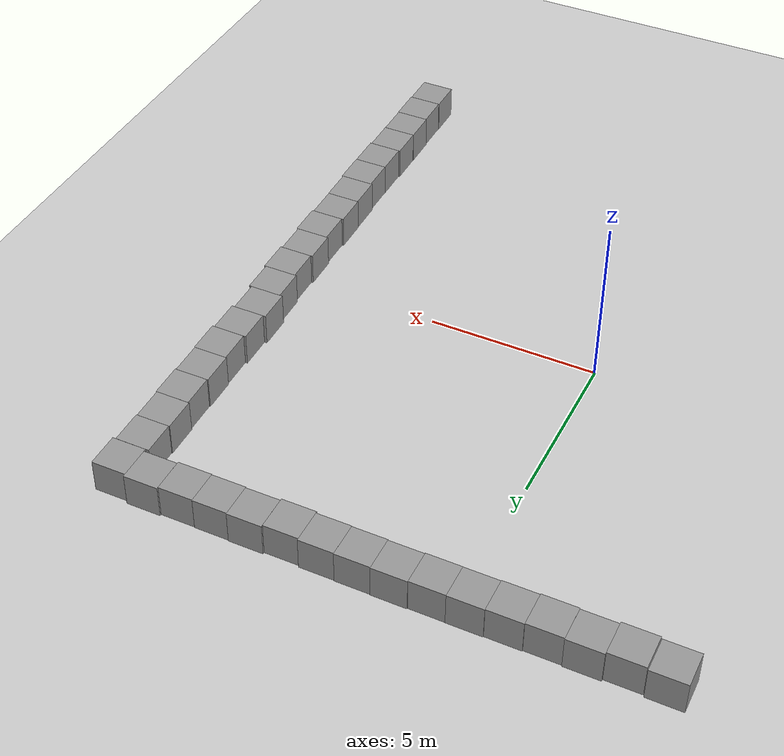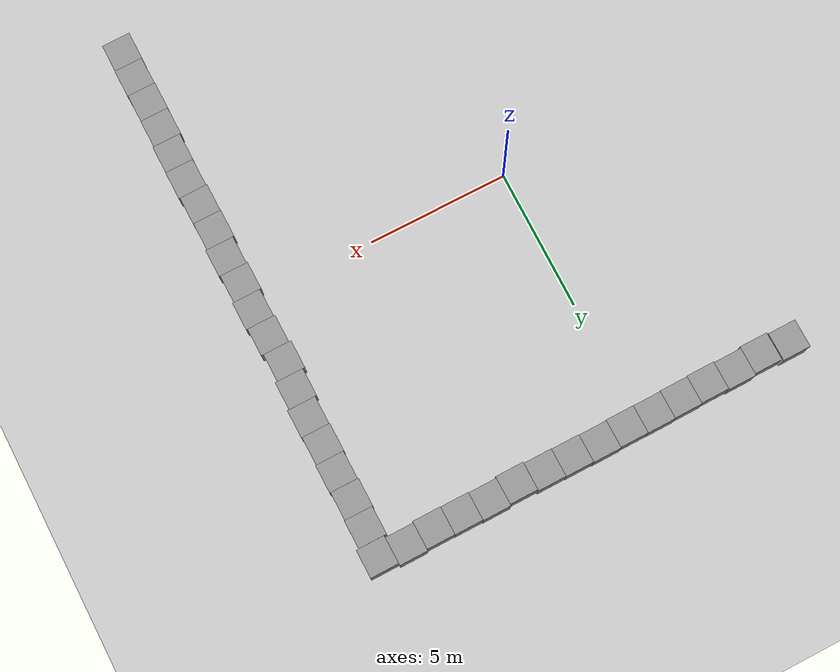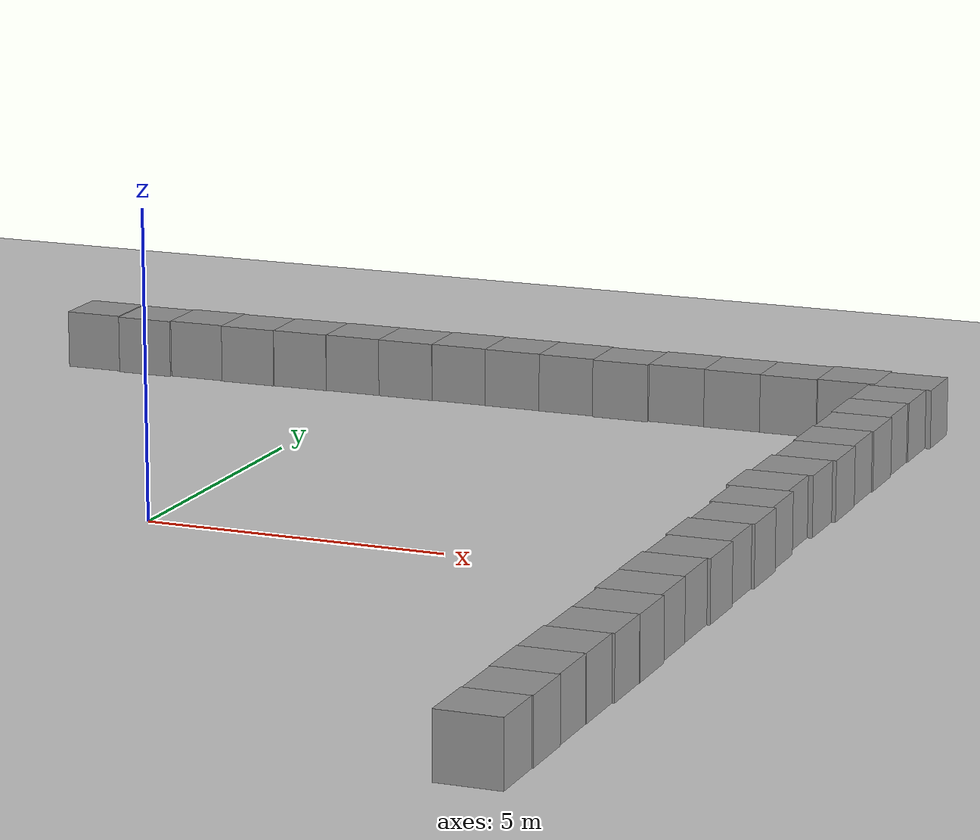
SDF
<sdf version="1.7">
 <world name="default">
  <light name="sun" type="directional">
   <pose>0 0 10 0 -0 0</pose>
   <diffuse>0.8 0.8 0.8 1</diffuse>
   <specular>0.2 0.2 0.2 1</specular>
   <attenuation>
    <range>1000</range>
    <constant>0.9</constant>
    <linear>0.01</linear>
    <quadratic>0.001</quadratic>
   </attenuation>
   <direction>-0.5 0.1 -0.9</direction>
   <spot><inner_angle>0</inner_angle><outer_angle>0</outer_angle><falloff>0</falloff></spot>
  </light>
  <model name="ground_plane">
   <static>1</static>
   <link name="link">
    <collision name="collision">
     <geometry><plane><normal>0 0 1</normal><size>100 100</size></plane></geometry>
     <surface>
      <contact><collide_bitmask>65535</collide_bitmask></contact>
      <friction><ode><mu>100</mu><mu2>50</mu2></ode></friction>
     </surface>
    </collision>
    <visual name="visual">
     <cast_shadows>0</cast_shadows>
     <geometry><plane><normal>0 0 1</normal><size>100 100</size></plane></geometry>
     <material>
      <script><uri>file://media/materials/scripts/gazebo.material</uri><name>Gazebo/Grey</name></script>
     </material>
    </visual>
   </link>
  </model>
  <gravity>0 0 -9.8</gravity>
  <magnetic_field>6e-06 2.3e-05 -4.2e-05</magnetic_field>
  <atmosphere type="adiabatic"/>
  <physics type="ode">
   <max_step_size>0.001</max_step_size>
   <real_time_factor>1</real_time_factor>
   <real_time_update_rate>1000</real_time_update_rate>
  </physics>
  <scene><ambient>0.4 0.4 0.4 1</ambient><background>0.7 0.7 0.7 1</background><shadows>1</shadows></scene>
  <audio><device>default</device></audio>
  <spherical_coordinates>
   <surface_model>EARTH_WGS84</surface_model>
   <latitude_deg>0</latitude_deg>
   <longitude_deg>0</longitude_deg>
   <elevation>0</elevation>
   <heading_deg>0</heading_deg>
  </spherical_coordinates>
  <model name="unit_box">
   <pose>9.51808 -9.54038 0.499995 0 1e-05 0.007074</pose>
   <link name="link">
    <inertial>
     <mass>1</mass>
     <inertia>
      <ixx>0.166667</ixx>
      <ixy>0</ixy>
      <ixz>0</ixz>
      <iyy>0.166667</iyy>
      <iyz>0</iyz>
      <izz>0.166667</izz>
     </inertia>
    </inertial>
    <collision name="collision"><geometry><box><size>1 1 1</size></box></geometry></collision>
    <visual name="visual">
     <geometry><box><size>1 1 1</size></box></geometry>
     <material>
      <script><name>Gazebo/Grey</name><uri>file://media/materials/scripts/gazebo.material</uri></script>
     </material>
    </visual>
   </link>
  </model>
  <model name="unit_box_0">
   <pose>9.5262 -8.54029 0.499995 0 -1e-05 0.007074</pose>
   <link name="link">
    <inertial>
     <mass>1</mass>
     <inertia>
      <ixx>0.166667</ixx>
      <ixy>0</ixy>
      <ixz>0</ixz>
      <iyy>0.166667</iyy>
      <iyz>0</iyz>
      <izz>0.166667</izz>
     </inertia>
    </inertial>
    <collision name="collision"><geometry><box><size>1 1 1</size></box></geometry></collision>
    <visual name="visual">
     <geometry><box><size>1 1 1</size></box></geometry>
     <material>
      <script><name>Gazebo/Grey</name><uri>file://media/materials/scripts/gazebo.material</uri></script>
     </material>
    </visual>
   </link>
  </model>
  <model name="unit_box_1">
   <pose>9.50518 -7.54041 0.499995 1e-05 0 0.007087</pose>
   <link name="link">
    <inertial>
     <mass>1</mass>
     <inertia>
      <ixx>0.166667</ixx>
      <ixy>0</ixy>
      <ixz>0</ixz>
      <iyy>0.166667</iyy>
      <iyz>0</iyz>
      <izz>0.166667</izz>
     </inertia>
    </inertial>
    <collision name="collision"><geometry><box><size>1 1 1</size></box></geometry></collision>
    <visual name="visual">
     <geometry><box><size>1 1 1</size></box></geometry>
     <material>
      <script><name>Gazebo/Grey</name><uri>file://media/materials/scripts/gazebo.material</uri></script>
     </material>
    </visual>
   </link>
  </model>
  <model name="unit_box_2">
   <pose>9.50638 -6.54026 0.5 0 -0 0.007307</pose>
   <link name="link">
    <inertial>
     <mass>1</mass>
     <inertia>
      <ixx>0.166667</ixx>
      <ixy>0</ixy>
      <ixz>0</ixz>
      <iyy>0.166667</iyy>
      <iyz>0</iyz>
      <izz>0.166667</izz>
     </inertia>
    </inertial>
    <collision name="collision"><geometry><box><size>1 1 1</size></box></geometry></collision>
    <visual name="visual">
     <geometry><box><size>1 1 1</size></box></geometry>
     <material>
      <script><name>Gazebo/Grey</name><uri>file://media/materials/scripts/gazebo.material</uri></script>
     </material>
    </visual>
   </link>
  </model>
  <model name="unit_box_3">
   <pose>9.53845 -5.53996 0.499995 1e-05 0 0.007395</pose>
   <link name="link">
    <inertial>
     <mass>1</mass>
     <inertia>
      <ixx>0.166667</ixx>
      <ixy>0</ixy>
      <ixz>0</ixz>
      <iyy>0.166667</iyy>
      <iyz>0</iyz>
      <izz>0.166667</izz>
     </inertia>
    </inertial>
    <collision name="collision"><geometry><box><size>1 1 1</size></box></geometry></collision>
    <visual name="visual">
     <geometry><box><size>1 1 1</size></box></geometry>
     <material>
      <script><name>Gazebo/Grey</name><uri>file://media/materials/scripts/gazebo.material</uri></script>
     </material>
    </visual>
   </link>
  </model>
  <model name="unit_box_4">
   <pose>9.53946 -4.53976 0.5 0 -0 0.007716</pose>
   <link name="link">
    <inertial>
     <mass>1</mass>
     <inertia>
      <ixx>0.166667</ixx>
      <ixy>0</ixy>
      <ixz>0</ixz>
      <iyy>0.166667</iyy>
      <iyz>0</iyz>
      <izz>0.166667</izz>
     </inertia>
    </inertial>
    <collision name="collision"><geometry><box><size>1 1 1</size></box></geometry></collision>
    <visual name="visual">
     <geometry><box><size>1 1 1</size></box></geometry>
     <material>
      <script><name>Gazebo/Grey</name><uri>file://media/materials/scripts/gazebo.material</uri></script>
     </material>
    </visual>
   </link>
  </model>
  <model name="unit_box_5">
   <pose>9.4944 -3.54004 0.499995 0 1e-05 0.007779</pose>
   <link name="link">
    <inertial>
     <mass>1</mass>
     <inertia>
      <ixx>0.166667</ixx>
      <ixy>0</ixy>
      <ixz>0</ixz>
      <iyy>0.166667</iyy>
      <iyz>0</iyz>
      <izz>0.166667</izz>
     </inertia>
    </inertial>
    <collision name="collision"><geometry><box><size>1 1 1</size></box></geometry></collision>
    <visual name="visual">
     <geometry><box><size>1 1 1</size></box></geometry>
     <material>
      <script><name>Gazebo/Grey</name><uri>file://media/materials/scripts/gazebo.material</uri></script>
     </material>
    </visual>
   </link>
  </model>
  <model name="unit_box_6">
   <pose>9.47628 -2.54012 0.499995 -0 1e-05 0.007828</pose>
   <link name="link">
    <inertial>
     <mass>1</mass>
     <inertia>
      <ixx>0.166667</ixx>
      <ixy>0</ixy>
      <ixz>0</ixz>
      <iyy>0.166667</iyy>
      <iyz>0</iyz>
      <izz>0.166667</izz>
     </inertia>
    </inertial>
    <collision name="collision"><geometry><box><size>1 1 1</size></box></geometry></collision>
    <visual name="visual">
     <geometry><box><size>1 1 1</size></box></geometry>
     <material>
      <script><name>Gazebo/Grey</name><uri>file://media/materials/scripts/gazebo.material</uri></script>
     </material>
    </visual>
   </link>
  </model>
  <model name="unit_box_7">
   <pose>9.5184 -1.53971 0.499995 0 1e-05 0.007937</pose>
   <link name="link">
    <inertial>
     <mass>1</mass>
     <inertia>
      <ixx>0.166667</ixx>
      <ixy>0</ixy>
      <ixz>0</ixz>
      <iyy>0.166667</iyy>
      <iyz>0</iyz>
      <izz>0.166667</izz>
     </inertia>
    </inertial>
    <collision name="collision"><geometry><box><size>1 1 1</size></box></geometry></collision>
    <visual name="visual">
     <geometry><box><size>1 1 1</size></box></geometry>
     <material>
      <script><name>Gazebo/Grey</name><uri>file://media/materials/scripts/gazebo.material</uri></script>
     </material>
    </visual>
   </link>
  </model>
  <model name="unit_box_8">
   <pose>9.4695 -0.540063 0.499995 0 1e-05 0.007937</pose>
   <link name="link">
    <inertial>
     <mass>1</mass>
     <inertia>
      <ixx>0.166667</ixx>
      <ixy>0</ixy>
      <ixz>0</ixz>
      <iyy>0.166667</iyy>
      <iyz>0</iyz>
      <izz>0.166667</izz>
     </inertia>
    </inertial>
    <collision name="collision"><geometry><box><size>1 1 1</size></box></geometry></collision>
    <visual name="visual">
     <geometry><box><size>1 1 1</size></box></geometry>
     <material>
      <script><name>Gazebo/Grey</name><uri>file://media/materials/scripts/gazebo.material</uri></script>
     </material>
    </visual>
   </link>
  </model>
  <model name="unit_box_8_clone">
   <pose>9.51195 0.460305 0.499995 1e-05 -0 0.007937</pose>
   <link name="link">
    <inertial>
     <mass>1</mass>
     <inertia>
      <ixx>0.166667</ixx>
      <ixy>0</ixy>
      <ixz>0</ixz>
      <iyy>0.166667</iyy>
      <iyz>0</iyz>
      <izz>0.166667</izz>
     </inertia>
    </inertial>
    <collision name="collision"><geometry><box><size>1 1 1</size></box></geometry></collision>
    <visual name="visual">
     <geometry><box><size>1 1 1</size></box></geometry>
     <material>
      <script><name>Gazebo/Grey</name><uri>file://media/materials/scripts/gazebo.material</uri></script>
     </material>
    </visual>
   </link>
  </model>
  <model name="unit_box_8_clone_0">
   <pose>9.45463 1.4599 0.499995 -1e-05 -0 0.007933</pose>
   <link name="link">
    <inertial>
     <mass>1</mass>
     <inertia>
      <ixx>0.166667</ixx>
      <ixy>0</ixy>
      <ixz>0</ixz>
      <iyy>0.166667</iyy>
      <iyz>0</iyz>
      <izz>0.166667</izz>
     </inertia>
    </inertial>
    <collision name="collision"><geometry><box><size>1 1 1</size></box></geometry></collision>
    <visual name="visual">
     <geometry><box><size>1 1 1</size></box></geometry>
     <material>
      <script><name>Gazebo/Grey</name><uri>file://media/materials/scripts/gazebo.material</uri></script>
     </material>
    </visual>
   </link>
  </model>
  <model name="unit_box_8_clone_1">
   <pose>9.36789 2.45924 0.499995 0 -1e-05 0.00793</pose>
   <link name="link">
    <inertial>
     <mass>1</mass>
     <inertia>
      <ixx>0.166667</ixx>
      <ixy>0</ixy>
      <ixz>0</ixz>
      <iyy>0.166667</iyy>
      <iyz>0</iyz>
      <izz>0.166667</izz>
     </inertia>
    </inertial>
    <collision name="collision"><geometry><box><size>1 1 1</size></box></geometry></collision>
    <visual name="visual">
     <geometry><box><size>1 1 1</size></box></geometry>
     <material>
      <script><name>Gazebo/Grey</name><uri>file://media/materials/scripts/gazebo.material</uri></script>
     </material>
    </visual>
   </link>
  </model>
  <model name="unit_box_8_clone_2">
   <pose>9.43952 3.45985 0.499995 0 -1e-05 0.007929</pose>
   <link name="link">
    <inertial>
     <mass>1</mass>
     <inertia>
      <ixx>0.166667</ixx>
      <ixy>0</ixy>
      <ixz>0</ixz>
      <iyy>0.166667</iyy>
      <iyz>0</iyz>
      <izz>0.166667</izz>
     </inertia>
    </inertial>
    <collision name="collision"><geometry><box><size>1 1 1</size></box></geometry></collision>
    <visual name="visual">
     <geometry><box><size>1 1 1</size></box></geometry>
     <material>
      <script><name>Gazebo/Grey</name><uri>file://media/materials/scripts/gazebo.material</uri></script>
     </material>
    </visual>
   </link>
  </model>
  <model name="unit_box_8_clone_3">
   <pose>9.49457 4.46032 0.5 0 -0 0.007929</pose>
   <link name="link">
    <inertial>
     <mass>1</mass>
     <inertia>
      <ixx>0.166667</ixx>
      <ixy>0</ixy>
      <ixz>0</ixz>
      <iyy>0.166667</iyy>
      <iyz>0</iyz>
      <izz>0.166667</izz>
     </inertia>
    </inertial>
    <collision name="collision"><geometry><box><size>1 1 1</size></box></geometry></collision>
    <visual name="visual">
     <geometry><box><size>1 1 1</size></box></geometry>
     <material>
      <script><name>Gazebo/Grey</name><uri>file://media/materials/scripts/gazebo.material</uri></script>
     </material>
    </visual>
   </link>
  </model>
  <model name="unit_box_8_clone_4">
   <pose>9.46475 5.46011 0.499995 0 -1e-05 0.007929</pose>
   <link name="link">
    <inertial>
     <mass>1</mass>
     <inertia>
      <ixx>0.166667</ixx>
      <ixy>0</ixy>
      <ixz>0</ixz>
      <iyy>0.166667</iyy>
      <iyz>0</iyz>
      <izz>0.166667</izz>
     </inertia>
    </inertial>
    <collision name="collision"><geometry><box><size>1 1 1</size></box></geometry></collision>
    <visual name="visual">
     <geometry><box><size>1 1 1</size></box></geometry>
     <material>
      <script><name>Gazebo/Grey</name><uri>file://media/materials/scripts/gazebo.material</uri></script>
     </material>
    </visual>
   </link>
  </model>
  <model name="unit_box_8_clone_5">
   <pose>9.48319 6.4603 0.499995 -1e-05 -0 0.007929</pose>
   <link name="link">
    <inertial>
     <mass>1</mass>
     <inertia>
      <ixx>0.166667</ixx>
      <ixy>0</ixy>
      <ixz>0</ixz>
      <iyy>0.166667</iyy>
      <iyz>0</iyz>
      <izz>0.166667</izz>
     </inertia>
    </inertial>
    <collision name="collision"><geometry><box><size>1 1 1</size></box></geometry></collision>
    <visual name="visual">
     <geometry><box><size>1 1 1</size></box></geometry>
     <material>
      <script><name>Gazebo/Grey</name><uri>file://media/materials/scripts/gazebo.material</uri></script>
     </material>
    </visual>
   </link>
  </model>
  <model name="unit_box_8_clone_6">
   <pose>9.44585 7.46036 0.499995 1e-05 -0 0.007261</pose>
   <link name="link">
    <inertial>
     <mass>1</mass>
     <inertia>
      <ixx>0.166667</ixx>
      <ixy>0</ixy>
      <ixz>0</ixz>
      <iyy>0.166667</iyy>
      <iyz>0</iyz>
      <izz>0.166667</izz>
     </inertia>
    </inertial>
    <collision name="collision"><geometry><box><size>1 1 1</size></box></geometry></collision>
    <visual name="visual">
     <geometry><box><size>1 1 1</size></box></geometry>
     <material>
      <script><name>Gazebo/Grey</name><uri>file://media/materials/scripts/gazebo.material</uri></script>
     </material>
    </visual>
   </link>
  </model>
  <model name="unit_box_8_clone_7">
   <pose>9.46062 8.46051 0.5 0 -0 0.00725</pose>
   <link name="link">
    <inertial>
     <mass>1</mass>
     <inertia>
      <ixx>0.166667</ixx>
      <ixy>0</ixy>
      <ixz>0</ixz>
      <iyy>0.166667</iyy>
      <iyz>0</iyz>
      <izz>0.166667</izz>
     </inertia>
    </inertial>
    <collision name="collision"><geometry><box><size>1 1 1</size></box></geometry></collision>
    <visual name="visual">
     <geometry><box><size>1 1 1</size></box></geometry>
     <material>
      <script><name>Gazebo/Grey</name><uri>file://media/materials/scripts/gazebo.material</uri></script>
     </material>
    </visual>
   </link>
  </model>
  <model name="unit_box_8_clone_8">
   <pose>9.54481 9.4622 0.5 0 -0 0.009147</pose>
   <link name="link">
    <inertial>
     <mass>1</mass>
     <inertia>
      <ixx>0.166667</ixx>
      <ixy>0</ixy>
      <ixz>0</ixz>
      <iyy>0.166667</iyy>
      <iyz>0</iyz>
      <izz>0.166667</izz>
     </inertia>
    </inertial>
    <collision name="collision"><geometry><box><size>1 1 1</size></box></geometry></collision>
    <visual name="visual">
     <geometry><box><size>1 1 1</size></box></geometry>
     <material>
      <script><name>Gazebo/Grey</name><uri>file://media/materials/scripts/gazebo.material</uri></script>
     </material>
    </visual>
   </link>
  </model>
  <model name="unit_box_8_clone_9">
   <pose>8.54387 9.53008 0.499995 0 -1e-05 0.0092</pose>
   <link name="link">
    <inertial>
     <mass>1</mass>
     <inertia>
      <ixx>0.166667</ixx>
      <ixy>0</ixy>
      <ixz>0</ixz>
      <iyy>0.166667</iyy>
      <iyz>0</iyz>
      <izz>0.166667</izz>
     </inertia>
    </inertial>
    <collision name="collision"><geometry><box><size>1 1 1</size></box></geometry></collision>
    <visual name="visual">
     <geometry><box><size>1 1 1</size></box></geometry>
     <material>
      <script><name>Gazebo/Grey</name><uri>file://media/materials/scripts/gazebo.material</uri></script>
     </material>
    </visual>
   </link>
  </model>
  <model name="unit_box_8_clone_10">
   <pose>7.54423 9.47492 0.499995 0 1e-05 0.009215</pose>
   <link name="link">
    <inertial>
     <mass>1</mass>
     <inertia>
      <ixx>0.166667</ixx>
      <ixy>0</ixy>
      <ixz>0</ixz>
      <iyy>0.166667</iyy>
      <iyz>0</iyz>
      <izz>0.166667</izz>
     </inertia>
    </inertial>
    <collision name="collision"><geometry><box><size>1 1 1</size></box></geometry></collision>
    <visual name="visual">
     <geometry><box><size>1 1 1</size></box></geometry>
     <material>
      <script><name>Gazebo/Grey</name><uri>file://media/materials/scripts/gazebo.material</uri></script>
     </material>
    </visual>
   </link>
  </model>
  <model name="unit_box_8_clone_11">
   <pose>6.54401 9.47893 0.499995 0 -1e-05 0.009153</pose>
   <link name="link">
    <inertial>
     <mass>1</mass>
     <inertia>
      <ixx>0.166667</ixx>
      <ixy>0</ixy>
      <ixz>0</ixz>
      <iyy>0.166667</iyy>
      <iyz>0</iyz>
      <izz>0.166667</izz>
     </inertia>
    </inertial>
    <collision name="collision"><geometry><box><size>1 1 1</size></box></geometry></collision>
    <visual name="visual">
     <geometry><box><size>1 1 1</size></box></geometry>
     <material>
      <script><name>Gazebo/Grey</name><uri>file://media/materials/scripts/gazebo.material</uri></script>
     </material>
    </visual>
   </link>
  </model>
  <model name="unit_box_8_clone_12">
   <pose>5.54372 9.49144 0.499995 1e-05 -0 0.008988</pose>
   <link name="link">
    <inertial>
     <mass>1</mass>
     <inertia>
      <ixx>0.166667</ixx>
      <ixy>0</ixy>
      <ixz>0</ixz>
      <iyy>0.166667</iyy>
      <iyz>0</iyz>
      <izz>0.166667</izz>
     </inertia>
    </inertial>
    <collision name="collision"><geometry><box><size>1 1 1</size></box></geometry></collision>
    <visual name="visual">
     <geometry><box><size>1 1 1</size></box></geometry>
     <material>
      <script><name>Gazebo/Grey</name><uri>file://media/materials/scripts/gazebo.material</uri></script>
     </material>
    </visual>
   </link>
  </model>
  <model name="unit_box_8_clone_13">
   <pose>4.54408 9.43057 0.5 0 -0 0.008712</pose>
   <link name="link">
    <inertial>
     <mass>1</mass>
     <inertia>
      <ixx>0.166667</ixx>
      <ixy>0</ixy>
      <ixz>0</ixz>
      <iyy>0.166667</iyy>
      <iyz>0</iyz>
      <izz>0.166667</izz>
     </inertia>
    </inertial>
    <collision name="collision"><geometry><box><size>1 1 1</size></box></geometry></collision>
    <visual name="visual">
     <geometry><box><size>1 1 1</size></box></geometry>
     <material>
      <script><name>Gazebo/Grey</name><uri>file://media/materials/scripts/gazebo.material</uri></script>
     </material>
    </visual>
   </link>
  </model>
  <model name="unit_box_8_clone_14">
   <pose>3.54339 9.4698 0.499995 -1e-05 -0 0.008058</pose>
   <link name="link">
    <inertial>
     <mass>1</mass>
     <inertia>
      <ixx>0.166667</ixx>
      <ixy>0</ixy>
      <ixz>0</ixz>
      <iyy>0.166667</iyy>
      <iyz>0</iyz>
      <izz>0.166667</izz>
     </inertia>
    </inertial>
    <collision name="collision"><geometry><box><size>1 1 1</size></box></geometry></collision>
    <visual name="visual">
     <geometry><box><size>1 1 1</size></box></geometry>
     <material>
      <script><name>Gazebo/Grey</name><uri>file://media/materials/scripts/gazebo.material</uri></script>
     </material>
    </visual>
   </link>
  </model>
  <model name="unit_box_8_clone_15">
   <pose>2.54322 9.47546 0.499995 1e-05 -0 0.0081</pose>
   <link name="link">
    <inertial>
     <mass>1</mass>
     <inertia>
      <ixx>0.166667</ixx>
      <ixy>0</ixy>
      <ixz>0</ixz>
      <iyy>0.166667</iyy>
      <iyz>0</iyz>
      <izz>0.166667</izz>
     </inertia>
    </inertial>
    <collision name="collision"><geometry><box><size>1 1 1</size></box></geometry></collision>
    <visual name="visual">
     <geometry><box><size>1 1 1</size></box></geometry>
     <material>
      <script><name>Gazebo/Grey</name><uri>file://media/materials/scripts/gazebo.material</uri></script>
     </material>
    </visual>
   </link>
  </model>
  <model name="unit_box_8_clone_16">
   <pose>1.54299 9.48403 0.5 0 -0 0.008046</pose>
   <link name="link">
    <inertial>
     <mass>1</mass>
     <inertia>
      <ixx>0.166667</ixx>
      <ixy>0</ixy>
      <ixz>0</ixz>
      <iyy>0.166667</iyy>
      <iyz>0</iyz>
      <izz>0.166667</izz>
     </inertia>
    </inertial>
    <collision name="collision"><geometry><box><size>1 1 1</size></box></geometry></collision>
    <visual name="visual">
     <geometry><box><size>1 1 1</size></box></geometry>
     <material>
      <script><name>Gazebo/Grey</name><uri>file://media/materials/scripts/gazebo.material</uri></script>
     </material>
    </visual>
   </link>
  </model>
  <model name="unit_box_8_clone_17">
   <pose>0.543177 9.45656 0.5 0 -0 0.008044</pose>
   <link name="link">
    <inertial>
     <mass>1</mass>
     <inertia>
      <ixx>0.166667</ixx>
      <ixy>0</ixy>
      <ixz>0</ixz>
      <iyy>0.166667</iyy>
      <iyz>0</iyz>
      <izz>0.166667</izz>
     </inertia>
    </inertial>
    <collision name="collision"><geometry><box><size>1 1 1</size></box></geometry></collision>
    <visual name="visual">
     <geometry><box><size>1 1 1</size></box></geometry>
     <material>
      <script><name>Gazebo/Grey</name><uri>file://media/materials/scripts/gazebo.material</uri></script>
     </material>
    </visual>
   </link>
  </model>
  <model name="unit_box_8_clone_18">
   <pose>-0.457005 9.45489 0.499995 1e-05 0 0.008209</pose>
   <link name="link">
    <inertial>
     <mass>1</mass>
     <inertia>
      <ixx>0.166667</ixx>
      <ixy>0</ixy>
      <ixz>0</ixz>
      <iyy>0.166667</iyy>
      <iyz>0</iyz>
      <izz>0.166667</izz>
     </inertia>
    </inertial>
    <collision name="collision"><geometry><box><size>1 1 1</size></box></geometry></collision>
    <visual name="visual">
     <geometry><box><size>1 1 1</size></box></geometry>
     <material>
      <script><name>Gazebo/Grey</name><uri>file://media/materials/scripts/gazebo.material</uri></script>
     </material>
    </visual>
   </link>
  </model>
  <model name="unit_box_8_clone_19">
   <pose>-1.45686 9.43006 0.499995 0 1e-05 0.008205</pose>
   <link name="link">
    <inertial>
     <mass>1</mass>
     <inertia>
      <ixx>0.166667</ixx>
      <ixy>0</ixy>
      <ixz>0</ixz>
      <iyy>0.166667</iyy>
      <iyz>0</iyz>
      <izz>0.166667</izz>
     </inertia>
    </inertial>
    <collision name="collision"><geometry><box><size>1 1 1</size></box></geometry></collision>
    <visual name="visual">
     <geometry><box><size>1 1 1</size></box></geometry>
     <material>
      <script><name>Gazebo/Grey</name><uri>file://media/materials/scripts/gazebo.material</uri></script>
     </material>
    </visual>
   </link>
  </model>
  <model name="unit_box_8_clone_20">
   <pose>-2.4567 9.40137 0.499995 1e-05 -0 0.008214</pose>
   <link name="link">
    <inertial>
     <mass>1</mass>
     <inertia>
      <ixx>0.166667</ixx>
      <ixy>0</ixy>
      <ixz>0</ixz>
      <iyy>0.166667</iyy>
      <iyz>0</iyz>
      <izz>0.166667</izz>
     </inertia>
    </inertial>
    <collision name="collision"><geometry><box><size>1 1 1</size></box></geometry></collision>
    <visual name="visual">
     <geometry><box><size>1 1 1</size></box></geometry>
     <material>
      <script><name>Gazebo/Grey</name><uri>file://media/materials/scripts/gazebo.material</uri></script>
     </material>
    </visual>
   </link>
  </model>
  <model name="unit_box_8_clone_21">
   <pose>-3.45711 9.42111 0.499995 1e-05 0 0.00795</pose>
   <link name="link">
    <inertial>
     <mass>1</mass>
     <inertia>
      <ixx>0.166667</ixx>
      <ixy>0</ixy>
      <ixz>0</ixz>
      <iyy>0.166667</iyy>
      <iyz>0</iyz>
      <izz>0.166667</izz>
     </inertia>
    </inertial>
    <collision name="collision"><geometry><box><size>1 1 1</size></box></geometry></collision>
    <visual name="visual">
     <geometry><box><size>1 1 1</size></box></geometry>
     <material>
      <script><name>Gazebo/Grey</name><uri>file://media/materials/scripts/gazebo.material</uri></script>
     </material>
    </visual>
   </link>
  </model>
  <model name="unit_box_8_clone_22">
   <pose>-4.45666 9.35843 0.499995 0 1e-05 0.007951</pose>
   <link name="link">
    <inertial>
     <mass>1</mass>
     <inertia>
      <ixx>0.166667</ixx>
      <ixy>0</ixy>
      <ixz>0</ixz>
      <iyy>0.166667</iyy>
      <iyz>0</iyz>
      <izz>0.166667</izz>
     </inertia>
    </inertial>
    <collision name="collision"><geometry><box><size>1 1 1</size></box></geometry></collision>
    <visual name="visual">
     <geometry><box><size>1 1 1</size></box></geometry>
     <material>
      <script><name>Gazebo/Grey</name><uri>file://media/materials/scripts/gazebo.material</uri></script>
     </material>
    </visual>
   </link>
  </model>
  <model name="unit_box_8_clone_23">
   <pose>-5.48421 9.40666 0.499995 1e-05 -0 0.007937</pose>
   <link name="link">
    <inertial>
     <mass>1</mass>
     <inertia>
      <ixx>0.166667</ixx>
      <ixy>0</ixy>
      <ixz>0</ixz>
      <iyy>0.166667</iyy>
      <iyz>0</iyz>
      <izz>0.166667</izz>
     </inertia>
    </inertial>
    <collision name="collision"><geometry><box><size>1 1 1</size></box></geometry></collision>
    <visual name="visual">
     <geometry><box><size>1 1 1</size></box></geometry>
     <material>
      <script><name>Gazebo/Grey</name><uri>file://media/materials/scripts/gazebo.material</uri></script>
     </material>
    </visual>
   </link>
  </model>
 </world>
</sdf>
